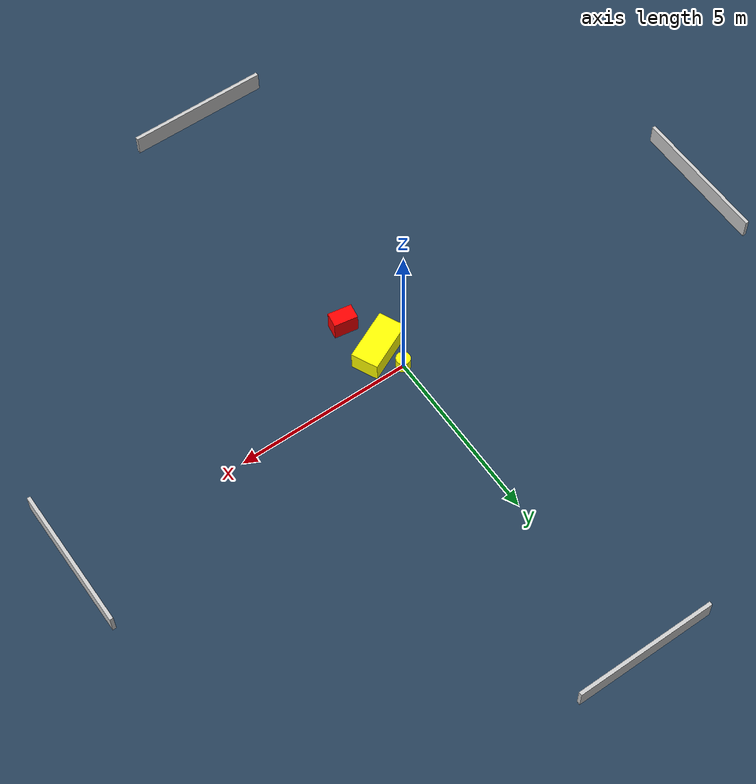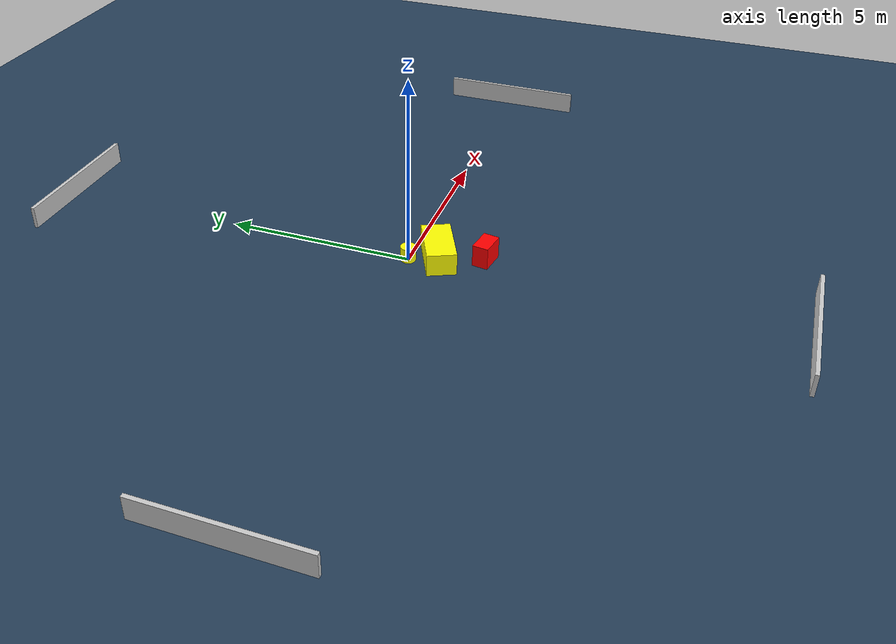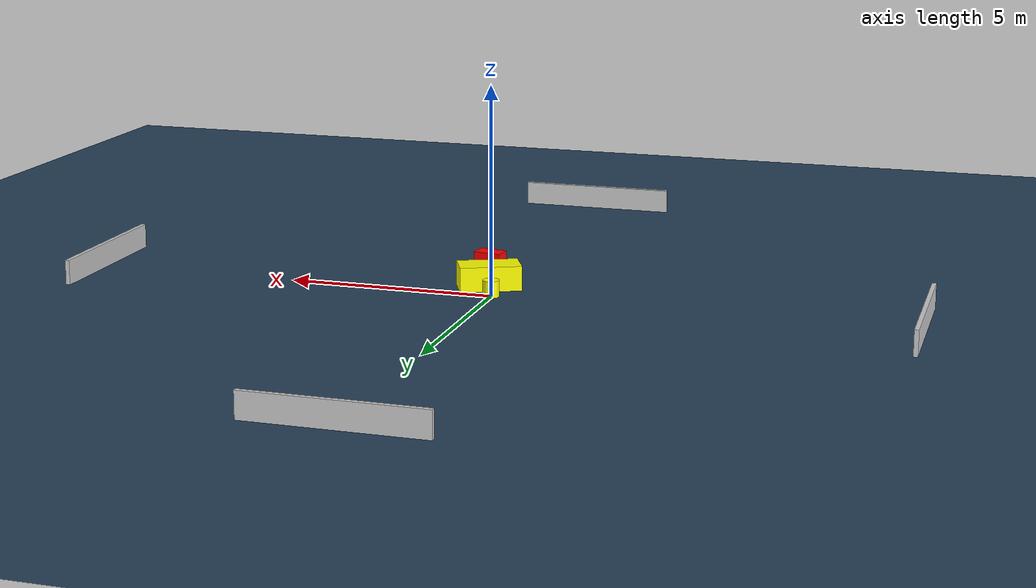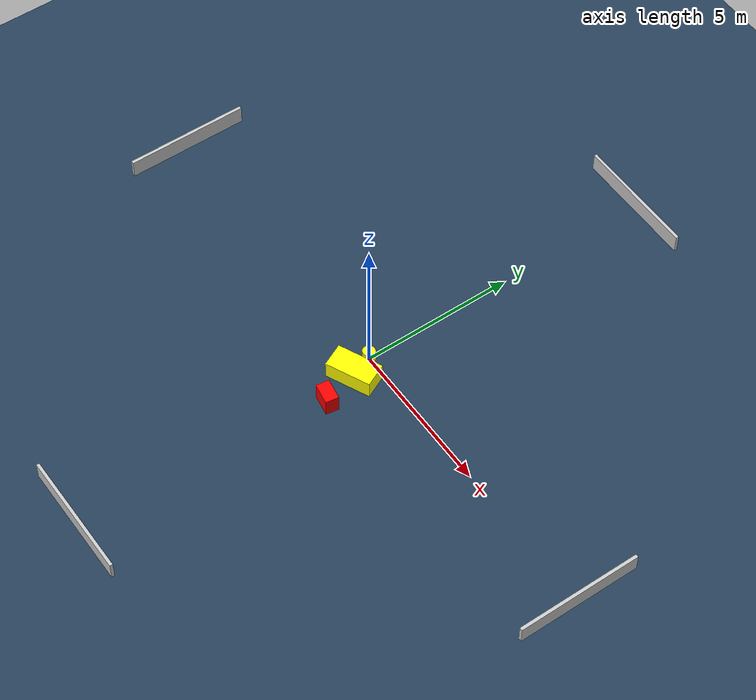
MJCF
<?xml version="1.0" ?>
<mujoco model="generated_environment">
  <option timestep="0.01" integrator="RK4" cone="elliptic"/>
  <default>
    <geom density="1"/>
  </default>
  <asset>
    <texture builtin="gradient" height="3072" name="skybox" rgb1="0.3 0.5 0.7" rgb2="0 0 0" type="skybox" width="512"/>
    <texture builtin="checker" height="300" name="groundplane" rgb1="0.2 0.3 0.4" rgb2="0.1 0.2 0.3" type="2d" width="300"/>
    <material name="groundplane" reflectance="0.2" texrepeat="5 5" texture="groundplane"/>
  </asset>
  <worldbody>
    <light dir="0 0 -1" directional="true" pos="0 0 1.5"/>
    <geom condim="3" friction="0.5 0.005 0.001" material="groundplane" name="floor" pos="0 0 0" size="0 0 0.05" type="plane"/>
    <body name="walls">
      <geom name="wall_1" condim="4" pos="-10.0 0.0 0.3" rgba="0.800000011920929 0.800000011920929 0.800000011920929 1.0" size="0.05 2.0 0.3" type="box"/>
      <geom name="wall_2" condim="4" pos="10.0 0.0 0.3" rgba="0.800000011920929 0.800000011920929 0.800000011920929 1.0" size="0.05 2.0 0.3" type="box"/>
      <geom name="wall_3" condim="4" pos="0.0 -10.0 0.3" rgba="0.800000011920929 0.800000011920929 0.800000011920929 1.0" size="2.0 0.05 0.3" type="box"/>
      <geom name="wall_4" condim="4" pos="0.0 10.0 0.3" rgba="0.800000011920929 0.800000011920929 0.800000011920929 1.0" size="2.0 0.05 0.3" type="box"/>
    </body>
    <body name="robot">
      <joint name="joint_x" type="slide" pos="0 0 0" axis="1 0 0"/>
      <joint name="joint_y" type="slide" pos="0 0 0" axis="0 1 0"/>
      <geom name="robot" type="cylinder" pos="0.0 0.0 0.2" size="0.2 0.2 0.0" mass="5.0" friction="1.0 0.005 0.0001" condim="4" rgba="1.0 1.0 0.0 1.0"/>
    </body>
    <body name="obstacle_1_movable">
      <geom name="obstacle_1_movable" condim="4" pos="0.2764231199386433 -0.7295026831375059 0.3" euler="0 0 295.05626327358374" friction="0.0 0.005 0.001" rgba="1.0 1.0 0.0 1.0" size="0.3864036688204453 0.7377169638667915 0.3" type="box" mass="0.1"/>
      <joint type="free"/>
    </body>
    <body name="obstacle_2_static">
      <geom name="obstacle_2_static" condim="4" pos="0.6074308922010837 -1.8909693754945598 0.3" euler="0 0 350.865474279377" friction="0.0 0.005 0.001" rgba="1.0 0.0 0.0 1.0" size="0.3387740951510093 0.21228365839218 0.3" type="box"/>
    </body>
  </worldbody>
  <actuator>
    <motor name="actuator_x" joint="joint_x" gear="1" ctrlrange="-1 1"/>
    <motor name="actuator_y" joint="joint_y" gear="1" ctrlrange="-1 1"/>
  </actuator>
</mujoco>
